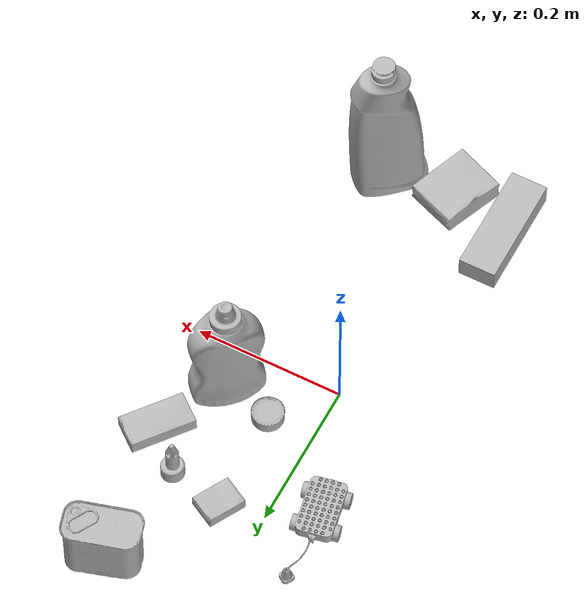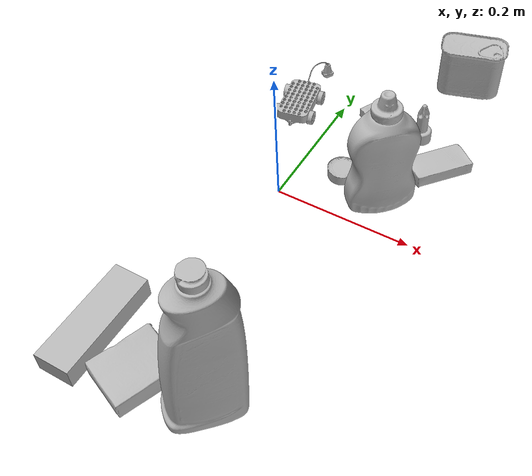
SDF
<sdf version="1.4">
  <world name="default">
    <light name="light1" type="point">
      <pose>0 0 1 0 0 0</pose>
      <diffuse>3 3 3 1</diffuse>
      <specular>3 3 3 1</specular>
    </light>
    <light name="light2" type="point">
      <pose>0 0.5 2 0 0 0</pose>
      <diffuse>1 1 1 1</diffuse>
      <specular>1 1 1 1</specular>
    </light>
    <light name="light3" type="point">
      <pose>0 0.5 2 0 0 0</pose>
      <diffuse>3 3 3 1</diffuse>
      <specular>3 3 3 1</specular>
    </light>
    <scene>
      <ambient>0.7 0.7 0.7</ambient>
    </scene>
    <model name="bottle1">
      <link name="link_bottle1">
        <collision name="default">
          <geometry>
            <mesh>
              <uri>model://bleach_cleanser/collision_meshes/collision.obj</uri>
              <scale>1.0 1.0 1.0</scale>
            </mesh>
          </geometry>
          <surface>
            <friction>
              <ode>
                <mu>0.5</mu>
                <mu2>0.5</mu2>
              </ode>
            </friction>
          <contact>
        <ode>
            <max_vel>0</max_vel>
            <min_depth>0.0001</min_depth>
            <kp>1e8</kp>
        </ode>
    </contact></surface>
        </collision>
        <visual name="default">
          <geometry>
            <mesh>
              <uri>model://bleach_cleanser/visual_meshes/visual.dae</uri>
              <scale>1.0 1.0 1.0</scale>
            </mesh>
          </geometry>
        </visual>
        <inertial>
          <mass>0.8435376882553101</mass>
          <pose>0.00012193185102660209 0.0037838835269212723 -0.02442161925137043 -0.0738167136291003 0.00042011570398771517 -0.0068750683244174</pose>
          <inertia>
            <ixx>0.0041056215</ixx>
            <iyy>0.0038258375</iyy>
            <izz>0.0007019545</izz>
            <ixy>0</ixy>
            <ixz>0</ixz>
            <iyz>0</iyz>
          </inertia>
        </inertial>
      </link>
      <pose>0.09762176126241684 -0.32146140933036804 0.12578417360782623 -0.0002047104914921012 1.1149989804004437e-05 -0.7947499576642872</pose>
    </model>
    <model name="bottle2">
      <link name="link_bottle2">
        <collision name="default">
          <geometry>
            <mesh>
              <uri>model://mustard_bottle/collision_meshes/collision.obj</uri>
              <scale>1.0 1.0 1.0</scale>
            </mesh>
          </geometry>
          <surface>
            <friction>
              <ode>
                <mu>0.5</mu>
                <mu2>0.5</mu2>
              </ode>
            </friction>
          <contact>
        <ode>
            <max_vel>0</max_vel>
            <min_depth>0.0001</min_depth>
            <kp>1e8</kp>
        </ode>
    </contact></surface>
        </collision>
        <visual name="default">
          <geometry>
            <mesh>
              <uri>model://mustard_bottle/visual_meshes/visual.dae</uri>
              <scale>1.0 1.0 1.0</scale>
            </mesh>
          </geometry>
        </visual>
        <inertial>
          <mass>0.5862947106361389</mass>
          <pose>0.0005032453336752951 -0.00015647400869056582 -0.01747579500079155 0.0004182326333961274 0.0009465780125852031 0.02485369627950655</pose>
          <inertia>
            <ixx>0.0016280604</ixx>
            <iyy>0.001428485</iyy>
            <izz>0.00042907606</izz>
            <ixy>0</ixy>
            <ixz>0</ixz>
            <iyz>0</iyz>
          </inertia>
        </inertial>
      </link>
      <pose>0.1302012950181961 0.05556449666619301 0.09615200757980347 1.4813240958456754e-05 1.6078825898064786e-05 2.3389103666905546</pose>
    </model>
    <model name="toy1">
      <link name="link_toy1">
        <collision name="default">
          <geometry>
            <mesh>
              <uri>model://d_toy_airplane/collision_meshes/collision.obj</uri>
              <scale>1.0 1.0 1.0</scale>
            </mesh>
          </geometry>
          <surface>
            <friction>
              <ode>
                <mu>0.5</mu>
                <mu2>0.5</mu2>
              </ode>
            </friction>
          <contact>
        <ode>
            <max_vel>0</max_vel>
            <min_depth>0.0001</min_depth>
            <kp>1e8</kp>
        </ode>
    </contact></surface>
        </collision>
        <visual name="default">
          <geometry>
            <mesh>
              <uri>model://d_toy_airplane/visual_meshes/visual.dae</uri>
              <scale>1.0 1.0 1.0</scale>
            </mesh>
          </geometry>
        </visual>
        <inertial>
          <mass>0.016342557966709137</mass>
          <pose>9.410292841494083e-05 -5.809347931062803e-05 -0.011728093959391117 0.0002665850352305412 0.004678995185611379 0.5193821656772198</pose>
          <inertia>
            <ixx>4.8991824e-06</ixx>
            <iyy>4.9028777e-06</iyy>
            <izz>1.4790946e-06</izz>
            <ixy>0</ixy>
            <ixz>0</ixz>
            <iyz>0</iyz>
          </inertia>
        </inertial>
      </link>
      <pose>0.13142219185829163 0.19631534814834595 0.03333915024995804 0.0001543268098933817 -5.0838951399323815e-05 2.805215478823323</pose>
    </model>
    <model name="toy2">
      <link name="link_toy2">
        <collision name="default">
          <geometry>
            <mesh>
              <uri>model://g_lego_duplo/collision_meshes/collision.obj</uri>
              <scale>0.5 0.5 0.5</scale>
            </mesh>
          </geometry>
          <surface>
            <friction>
              <ode>
                <mu>0.5</mu>
                <mu2>0.5</mu2>
              </ode>
            </friction>
          <contact>
        <ode>
            <max_vel>0</max_vel>
            <min_depth>0.0001</min_depth>
            <kp>1e8</kp>
        </ode>
    </contact></surface>
        </collision>
        <visual name="default">
          <geometry>
            <mesh>
              <uri>model://g_lego_duplo/visual_meshes/visual.dae</uri>
              <scale>0.5 0.5 0.5</scale>
            </mesh>
          </geometry>
        </visual>
        <inertial>
          <mass>0.06075087562203407</mass>
          <pose>-0.02502383105456829 0.0008777320035733283 0.0019403373589739203 0.010962969944672394 0.038108282316868566 -0.09653022106038826</pose>
          <inertia>
            <ixx>2.2007183e-05</ixx>
            <iyy>6.65348e-05</iyy>
            <izz>8.323752e-05</izz>
            <ixy>0</ixy>
            <ixz>0</ixz>
            <iyz>0</iyz>
          </inertia>
        </inertial>
      </link>
      <pose>-0.06421248614788055 0.1950168013572693 0.014909902587532997 0.00039140519386083987 -0.002307167183881361 1.7570657770586813</pose>
    </model>
    <model name="can1">
      <link name="link_can1">
        <collision name="default">
          <geometry>
            <mesh>
              <uri>model://potted_meat_can/collision_meshes/collision.obj</uri>
              <scale>1.0 1.0 1.0</scale>
            </mesh>
          </geometry>
          <surface>
            <friction>
              <ode>
                <mu>0.5</mu>
                <mu2>0.5</mu2>
              </ode>
            </friction>
          <contact>
        <ode>
            <max_vel>0</max_vel>
            <min_depth>0.0001</min_depth>
            <kp>1e8</kp>
        </ode>
    </contact></surface>
        </collision>
        <visual name="default">
          <geometry>
            <mesh>
              <uri>model://potted_meat_can/visual_meshes/visual.dae</uri>
              <scale>1.0 1.0 1.0</scale>
            </mesh>
          </geometry>
        </visual>
        <inertial>
          <mass>0.20078136026859283</mass>
          <pose>0.00022888144303578883 -5.9891190176131204e-05 -0.0006367445457726717 -0.02809335636395505 -0.007232596981483405 0.015406261474000347</pose>
          <inertia>
            <ixx>0.0002582842</ixx>
            <iyy>0.00015692727</iyy>
            <izz>0.0001878526</izz>
            <ixy>0</ixy>
            <ixz>0</ixz>
            <iyz>0</iyz>
          </inertia>
        </inertial>
      </link>
      <pose>0.14839857816696167 0.34185540676116943 0.042128004133701324 -5.222788486562989e-08 -4.769736906932175e-07 1.8456962874553973</pose>
    </model>
    <model name="can2">
      <link name="link_can2">
        <collision name="default">
          <geometry>
            <mesh>
              <uri>model://tuna_fish_can/collision_meshes/collision.obj</uri>
              <scale>0.5 0.5 0.5</scale>
            </mesh>
          </geometry>
          <surface>
            <friction>
              <ode>
                <mu>0.5</mu>
                <mu2>0.5</mu2>
              </ode>
            </friction>
          <contact>
        <ode>
            <max_vel>0</max_vel>
            <min_depth>0.0001</min_depth>
            <kp>1e8</kp>
        </ode>
    </contact></surface>
        </collision>
        <visual name="default">
          <geometry>
            <mesh>
              <uri>model://tuna_fish_can/visual_meshes/visual.dae</uri>
              <scale>0.5 0.5 0.5</scale>
            </mesh>
          </geometry>
        </visual>
        <inertial>
          <mass>0.014736190438270569</mass>
          <pose>-2.036184559983667e-05 -7.256420758494642e-06 -0.0005269023822620511 -0.0017944748482382063 0.00017166274907885265 0.24056368509195397</pose>
          <inertia>
            <ixx>1.992355e-06</ixx>
            <iyy>1.9840513e-06</iyy>
            <izz>3.409204e-06</izz>
            <ixy>0</ixy>
            <ixz>0</ixz>
            <iyz>0</iyz>
          </inertia>
        </inertial>
      </link>
      <pose>0.06370898336172104 0.07185141742229462 0.00851999782025814 -2.1518845844331977e-08 3.597984803147891e-08 -2.7326520886863555</pose>
    </model>
    <model name="box1">
      <link name="link_box1">
        <collision name="default">
          <geometry>
            <mesh>
              <uri>model://sugar_box/collision_meshes/collision.obj</uri>
              <scale>0.5 0.5 0.5</scale>
            </mesh>
          </geometry>
          <surface>
            <friction>
              <ode>
                <mu>0.5</mu>
                <mu2>0.5</mu2>
              </ode>
            </friction>
          <contact>
        <ode>
            <max_vel>0</max_vel>
            <min_depth>0.0001</min_depth>
            <kp>1e8</kp>
        </ode>
    </contact></surface>
        </collision>
        <visual name="default">
          <geometry>
            <mesh>
              <uri>model://sugar_box/visual_meshes/visual.dae</uri>
              <scale>0.5 0.5 0.5</scale>
            </mesh>
          </geometry>
        </visual>
        <inertial>
          <mass>0.12222740799188614</mass>
          <pose>0.0005171863595023751 1.9245549992774613e-05 -0.00018182404164690524 -0.000404625834306888 0.0010506637544316808 0.0026153790219515644</pose>
          <inertia>
            <ixx>2.5459884e-05</ixx>
            <iyy>8.229157e-05</iyy>
            <izz>9.851283e-05</izz>
            <ixy>0</ixy>
            <ixz>0</ixz>
            <iyz>0</iyz>
          </inertia>
        </inertial>
      </link>
      <pose>0.17984145879745483 0.14757497608661652 0.01139929797500372 0.0007754153593164576 -0.02343322370203682 -2.253631862946224</pose>
    </model>
    <model name="box2">
      <link name="link_box2">
        <collision name="default">
          <geometry>
            <mesh>
              <uri>model://jenga/collision_meshes/collision.obj</uri>
              <scale>1.0 1.0 1.0</scale>
            </mesh>
          </geometry>
          <surface>
            <friction>
              <ode>
                <mu>0.5</mu>
                <mu2>0.5</mu2>
              </ode>
            </friction>
          <contact>
        <ode>
            <max_vel>0</max_vel>
            <min_depth>0.0001</min_depth>
            <kp>1e8</kp>
        </ode>
    </contact></surface>
        </collision>
        <visual name="default">
          <geometry>
            <mesh>
              <uri>model://jenga/visual_meshes/visual.dae</uri>
              <scale>1.0 1.0 1.0</scale>
            </mesh>
          </geometry>
        </visual>
        <inertial>
          <mass>0.17645145952701569</mass>
          <pose>-2.502855807051674e-07 -0.00010250011109746993 -4.0923405322246253e-05 0.0 -7.342155186052628e-07 0.0</pose>
          <inertia>
            <ixx>4.8828406e-05</ixx>
            <iyy>0.00033085994</iyy>
            <izz>0.00035322108</izz>
            <ixy>0</ixy>
            <ixz>0</ixz>
            <iyz>0</iyz>
          </inertia>
        </inertial>
      </link>
      <pose>-0.07529608905315399 -0.3059168756008148 0.014999995008111 6.785430907778301e-09 1.5804811533452353e-09 1.5698017056751559</pose>
    </model>
    <model name="box3">
      <link name="link_box3">
        <collision name="default">
          <geometry>
            <mesh>
              <uri>model://gelatin_box/collision_meshes/collision.obj</uri>
              <scale>1.0 1.0 1.0</scale>
            </mesh>
          </geometry>
          <surface>
            <friction>
              <ode>
                <mu>0.5</mu>
                <mu2>0.5</mu2>
              </ode>
            </friction>
          <contact>
        <ode>
            <max_vel>0</max_vel>
            <min_depth>0.0001</min_depth>
            <kp>1e8</kp>
        </ode>
    </contact></surface>
        </collision>
        <visual name="default">
          <geometry>
            <mesh>
              <uri>model://gelatin_box/visual_meshes/visual.dae</uri>
              <scale>1.0 1.0 1.0</scale>
            </mesh>
          </geometry>
        </visual>
        <inertial>
          <mass>0.13059620559215546</mass>
          <pose>0.0004319618456065655 0.00011156871914863586 -0.0003640321083366871 -0.0010503721928909568 -0.00475581775899517 0.01644055574591333</pose>
          <inertia>
            <ixx>9.219027e-05</ixx>
            <iyy>6.585102e-05</iyy>
            <izz>0.00014033413</izz>
            <ixy>0</ixy>
            <ixz>0</ixz>
            <iyz>0</iyz>
          </inertia>
        </inertial>
      </link>
      <pose>0.005710037425160408 -0.33228981494903564 0.015168314799666405 0.005597417661815255 -0.007304466325823674 2.752902770161059</pose>
    </model>
    <model name="box4">
      <link name="link_box4">
        <collision name="default">
          <geometry>
            <mesh>
              <uri>model://cracker_box/collision_meshes/collision.obj</uri>
              <scale>0.25 0.25 0.25</scale>
            </mesh>
          </geometry>
          <surface>
            <friction>
              <ode>
                <mu>0.5</mu>
                <mu2>0.5</mu2>
              </ode>
            </friction>
          <contact>
        <ode>
            <max_vel>0</max_vel>
            <min_depth>0.0001</min_depth>
            <kp>1e8</kp>
        </ode>
    </contact></surface>
        </collision>
        <visual name="default">
          <geometry>
            <mesh>
              <uri>model://cracker_box/visual_meshes/visual.dae</uri>
              <scale>0.25 0.25 0.25</scale>
            </mesh>
          </geometry>
        </visual>
        <inertial>
          <mass>0.04771818593144417</mass>
          <pose>0.0002366032567806542 6.358561950037256e-05 -0.00042573839891701937 -0.00031620769108308636 -0.011106489600173282 0.0025467959336867136</pose>
          <inertia>
            <ixx>7.5858593e-06</ixx>
            <iyy>1.2525745e-05</iyy>
            <izz>1.7875387e-05</izz>
            <ixy>0</ixy>
            <ixz>0</ixz>
            <iyz>0</iyz>
          </inertia>
        </inertial>
      </link>
      <pose>0.058447711169719696 0.2110905945301056 0.009096023626625538 -0.014050263098363686 -0.005016863907282208 1.0760906646054058</pose>
    </model>
  <physics type="ode">
      <max_contacts>50</max_contacts>
      <ode>
        <solver>
          <type>quick</type>
          <iters>75</iters>
        </solver>
        <constraints>
          <contact_max_correcting_vel>0</contact_max_correcting_vel>
          <contact_surface_layer>0</contact_surface_layer>
        </constraints>
      </ode>
    </physics></world>
</sdf>
